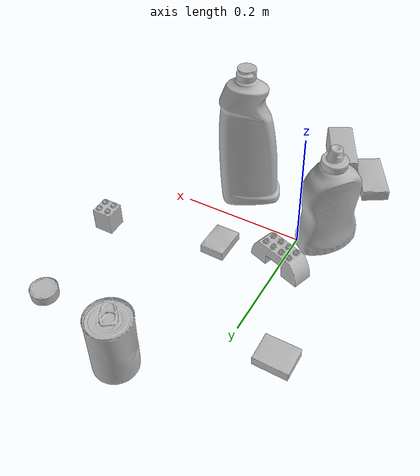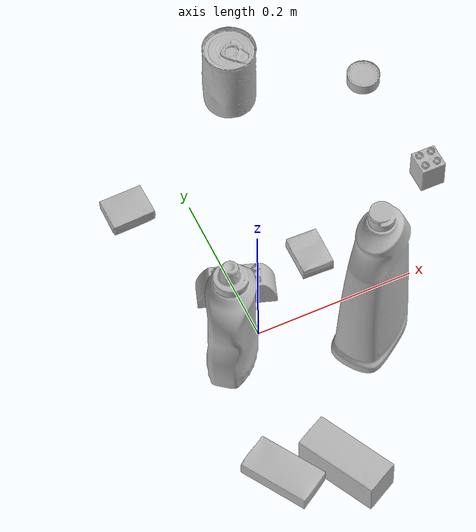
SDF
<sdf version="1.4">
  <world name="default">
    <light name="light1" type="point">
      <pose>0 0 1 0 0 0</pose>
      <diffuse>3 3 3 1</diffuse>
      <specular>3 3 3 1</specular>
    </light>
    <light name="light2" type="point">
      <pose>0 0.5 2 0 0 0</pose>
      <diffuse>1 1 1 1</diffuse>
      <specular>1 1 1 1</specular>
    </light>
    <light name="light3" type="point">
      <pose>0 0.5 2 0 0 0</pose>
      <diffuse>3 3 3 1</diffuse>
      <specular>3 3 3 1</specular>
    </light>
    <scene>
      <ambient>0.7 0.7 0.7</ambient>
    </scene>
    <model name="bottle1">
      <link name="link_bottle1">
        <collision name="default">
          <geometry>
            <mesh>
              <uri>model://bleach_cleanser/collision_meshes/collision.obj</uri>
              <scale>1.0 1.0 1.0</scale>
            </mesh>
          </geometry>
          <surface>
            <friction>
              <ode>
                <mu>0.5</mu>
                <mu2>0.5</mu2>
              </ode>
            </friction>
          <contact>
        <ode>
            <max_vel>0</max_vel>
            <min_depth>0.0001</min_depth>
            <kp>1e8</kp>
        </ode>
    </contact></surface>
        </collision>
        <visual name="default">
          <geometry>
            <mesh>
              <uri>model://bleach_cleanser/visual_meshes/visual.dae</uri>
              <scale>1.0 1.0 1.0</scale>
            </mesh>
          </geometry>
        </visual>
        <inertial>
          <mass>0.7954697608947754</mass>
          <pose>0.00012193184375064448 0.0037838825955986977 -0.02442161552608013 -0.0738167061583634 0.000420116841178447 -0.006875049257496471</pose>
          <inertia>
            <ixx>0.003871667</ixx>
            <iyy>0.0036078263</iyy>
            <izz>0.00066195446</izz>
            <ixy>0</ixy>
            <ixz>0</ixz>
            <iyz>0</iyz>
          </inertia>
        </inertial>
      </link>
      <pose>0.11748877912759781 -0.061021413654088974 0.12578417360782623 -0.00019960531061158365 1.7144503820110076e-05 -0.9838581283700285</pose>
    </model>
    <model name="bottle2">
      <link name="link_bottle2">
        <collision name="default">
          <geometry>
            <mesh>
              <uri>model://mustard_bottle/collision_meshes/collision.obj</uri>
              <scale>1.0 1.0 1.0</scale>
            </mesh>
          </geometry>
          <surface>
            <friction>
              <ode>
                <mu>0.5</mu>
                <mu2>0.5</mu2>
              </ode>
            </friction>
          <contact>
        <ode>
            <max_vel>0</max_vel>
            <min_depth>0.0001</min_depth>
            <kp>1e8</kp>
        </ode>
    </contact></surface>
        </collision>
        <visual name="default">
          <geometry>
            <mesh>
              <uri>model://mustard_bottle/visual_meshes/visual.dae</uri>
              <scale>1.0 1.0 1.0</scale>
            </mesh>
          </geometry>
        </visual>
        <inertial>
          <mass>0.5118113160133362</mass>
          <pose>0.0005032453336752951 -0.00015647397958673537 -0.017475785687565804 0.0004182313596805905 0.000946575919178121 0.024853765212265823</pose>
          <inertia>
            <ixx>0.00142123</ixx>
            <iyy>0.0012470091</iyy>
            <izz>0.0003745659</izz>
            <ixy>0</ixy>
            <ixz>0</ixz>
            <iyz>0</iyz>
          </inertia>
        </inertial>
      </link>
      <pose>-0.04040507599711418 -0.01643775776028633 0.09617073088884354 -3.9982374544792355e-05 0.0008749415394811107 2.4713550476762425</pose>
    </model>
    <model name="toy1">
      <link name="link_toy1">
        <collision name="default">
          <geometry>
            <mesh>
              <uri>model://b_lego_duplo/collision_meshes/collision.obj</uri>
              <scale>1.0 1.0 1.0</scale>
            </mesh>
          </geometry>
          <surface>
            <friction>
              <ode>
                <mu>0.5</mu>
                <mu2>0.5</mu2>
              </ode>
            </friction>
          <contact>
        <ode>
            <max_vel>0</max_vel>
            <min_depth>0.0001</min_depth>
            <kp>1e8</kp>
        </ode>
    </contact></surface>
        </collision>
        <visual name="default">
          <geometry>
            <mesh>
              <uri>model://b_lego_duplo/visual_meshes/visual.dae</uri>
              <scale>1.0 1.0 1.0</scale>
            </mesh>
          </geometry>
        </visual>
        <inertial>
          <mass>0.04622781649231911</mass>
          <pose>-0.00011053043272113428 -9.152668098977301e-06 0.0019294294761493802 -0.037494565787594906 -0.026354503997733224 0.45188645636516256</pose>
          <inertia>
            <ixx>9.46087e-06</ixx>
            <iyy>9.524471e-06</iyy>
            <izz>8.429326e-06</izz>
            <ixy>0</ixy>
            <ixz>0</ixz>
            <iyz>0</iyz>
          </inertia>
        </inertial>
      </link>
      <pose>0.28355082869529724 0.1169426292181015 0.021814996376633644 -6.471805276026222e-07 6.94217535022977e-08 -1.5658781842560214</pose>
    </model>
    <model name="toy2">
      <link name="link_toy2">
        <collision name="default">
          <geometry>
            <mesh>
              <uri>model://e_lego_duplo/collision_meshes/collision.obj</uri>
              <scale>1.0 1.0 1.0</scale>
            </mesh>
          </geometry>
          <surface>
            <friction>
              <ode>
                <mu>0.5</mu>
                <mu2>0.5</mu2>
              </ode>
            </friction>
          <contact>
        <ode>
            <max_vel>0</max_vel>
            <min_depth>0.0001</min_depth>
            <kp>1e8</kp>
        </ode>
    </contact></surface>
        </collision>
        <visual name="default">
          <geometry>
            <mesh>
              <uri>model://e_lego_duplo/visual_meshes/visual.dae</uri>
              <scale>1.0 1.0 1.0</scale>
            </mesh>
          </geometry>
        </visual>
        <inertial>
          <mass>0.08809097856283188</mass>
          <pose>0.00032560486579313874 0.00023485404381062835 0.0019521467620506883 -0.022567425824888195 -6.82459351116558e-05 -0.007625145117383363</pose>
          <inertia>
            <ixx>1.836988e-05</ixx>
            <iyy>7.539474e-05</iyy>
            <izz>7.34193e-05</izz>
            <ixy>0</ixy>
            <ixz>0</ixz>
            <iyz>0</iyz>
          </inertia>
        </inertial>
      </link>
      <pose>-2.189906081184745e-05 0.061974167823791504 0.02180899679660797 5.745104776728132e-08 2.9360928827348422e-08 2.817312432563464</pose>
    </model>
    <model name="can1">
      <link name="link_can1">
        <collision name="default">
          <geometry>
            <mesh>
              <uri>model://tomato_soup_can/collision_meshes/collision.obj</uri>
              <scale>1.0 1.0 1.0</scale>
            </mesh>
          </geometry>
          <surface>
            <friction>
              <ode>
                <mu>0.5</mu>
                <mu2>0.5</mu2>
              </ode>
            </friction>
          <contact>
        <ode>
            <max_vel>0</max_vel>
            <min_depth>0.0001</min_depth>
            <kp>1e8</kp>
        </ode>
    </contact></surface>
        </collision>
        <visual name="default">
          <geometry>
            <mesh>
              <uri>model://tomato_soup_can/visual_meshes/visual.dae</uri>
              <scale>1.0 1.0 1.0</scale>
            </mesh>
          </geometry>
        </visual>
        <inertial>
          <mass>0.4347945749759674</mass>
          <pose>0.0001265227037947625 0.00010805525380419567 -0.0017973979702219367 0.007020064127759274 0.0004229940757469139 -0.009903323281130803</pose>
          <inertia>
            <ixx>0.00047671542</ixx>
            <iyy>0.00047396024</iyy>
            <izz>0.00024707714</izz>
            <ixy>0</ixy>
            <ixz>0</ixz>
            <iyz>0</iyz>
          </inertia>
        </inertial>
      </link>
      <pose>0.11505159735679626 0.33096519112586975 0.05127399414777756 -4.5598527050238275e-07 -8.484473158258728e-07 0.3485246542702021</pose>
    </model>
    <model name="can2">
      <link name="link_can2">
        <collision name="default">
          <geometry>
            <mesh>
              <uri>model://tuna_fish_can/collision_meshes/collision.obj</uri>
              <scale>0.5 0.5 0.5</scale>
            </mesh>
          </geometry>
          <surface>
            <friction>
              <ode>
                <mu>0.5</mu>
                <mu2>0.5</mu2>
              </ode>
            </friction>
          <contact>
        <ode>
            <max_vel>0</max_vel>
            <min_depth>0.0001</min_depth>
            <kp>1e8</kp>
        </ode>
    </contact></surface>
        </collision>
        <visual name="default">
          <geometry>
            <mesh>
              <uri>model://tuna_fish_can/visual_meshes/visual.dae</uri>
              <scale>0.5 0.5 0.5</scale>
            </mesh>
          </geometry>
        </visual>
        <inertial>
          <mass>0.02951119653880596</mass>
          <pose>-2.0361847418826073e-05 -7.256335720740026e-06 -0.0005269026733003557 -0.0017944763161136105 0.00017161533088142807 0.2405366956082085</pose>
          <inertia>
            <ixx>3.989958e-06</ixx>
            <iyy>3.9733272e-06</iyy>
            <izz>6.827389e-06</izz>
            <ixy>0</ixy>
            <ixz>0</ixz>
            <iyz>0</iyz>
          </inertia>
        </inertial>
      </link>
      <pose>0.2784363925457001 0.28372982144355774 0.008520000614225864 5.1009121184415926e-08 1.875337186701406e-08 -2.0247434874056713</pose>
    </model>
    <model name="box1">
      <link name="link_box1">
        <collision name="default">
          <geometry>
            <mesh>
              <uri>model://sugar_box/collision_meshes/collision.obj</uri>
              <scale>0.5 0.5 0.5</scale>
            </mesh>
          </geometry>
          <surface>
            <friction>
              <ode>
                <mu>0.5</mu>
                <mu2>0.5</mu2>
              </ode>
            </friction>
          <contact>
        <ode>
            <max_vel>0</max_vel>
            <min_depth>0.0001</min_depth>
            <kp>1e8</kp>
        </ode>
    </contact></surface>
        </collision>
        <visual name="default">
          <geometry>
            <mesh>
              <uri>model://sugar_box/visual_meshes/visual.dae</uri>
              <scale>0.5 0.5 0.5</scale>
            </mesh>
          </geometry>
        </visual>
        <inertial>
          <mass>0.10932230949401855</mass>
          <pose>0.0005171863595023751 1.924554817378521e-05 -0.00018182402709499002 -0.00040462630024242077 0.0010506636385781449 0.0026153787888990553</pose>
          <inertia>
            <ixx>2.277176e-05</ixx>
            <iyy>7.3603005e-05</iyy>
            <izz>8.811158e-05</izz>
            <ixy>0</ixy>
            <ixz>0</ixz>
            <iyz>0</iyz>
          </inertia>
        </inertial>
      </link>
      <pose>-0.055472902953624725 -0.18573875725269318 0.011399305425584316 0.000775300351147049 -0.023433040435834197 -1.0359260192148032</pose>
    </model>
    <model name="box2">
      <link name="link_box2">
        <collision name="default">
          <geometry>
            <mesh>
              <uri>model://pudding_box/collision_meshes/collision.obj</uri>
              <scale>0.5 0.5 0.5</scale>
            </mesh>
          </geometry>
          <surface>
            <friction>
              <ode>
                <mu>0.5</mu>
                <mu2>0.5</mu2>
              </ode>
            </friction>
          <contact>
        <ode>
            <max_vel>0</max_vel>
            <min_depth>0.0001</min_depth>
            <kp>1e8</kp>
        </ode>
    </contact></surface>
        </collision>
        <visual name="default">
          <geometry>
            <mesh>
              <uri>model://pudding_box/visual_meshes/visual.dae</uri>
              <scale>0.5 0.5 0.5</scale>
            </mesh>
          </geometry>
        </visual>
        <inertial>
          <mass>0.061322033405303955</mass>
          <pose>0.00024474109522998333 0.00040339428232982755 -0.0002594413817860186 0.0052131013423229325 -0.006603797777692156 0.020079823300565562</pose>
          <inertia>
            <ixx>1.733035e-05</ixx>
            <iyy>1.1659984e-05</iyy>
            <izz>2.559279e-05</izz>
            <ixy>0</ixy>
            <ixz>0</ixz>
            <iyz>0</iyz>
          </inertia>
        </inertial>
      </link>
      <pose>-0.07205254584550858 0.2224038541316986 0.00986290443688631 0.022349677516445662 -0.011390930581103334 -1.5620429159509253</pose>
    </model>
    <model name="box3">
      <link name="link_box3">
        <collision name="default">
          <geometry>
            <mesh>
              <uri>model://cracker_box/collision_meshes/collision.obj</uri>
              <scale>0.25 0.25 0.25</scale>
            </mesh>
          </geometry>
          <surface>
            <friction>
              <ode>
                <mu>0.5</mu>
                <mu2>0.5</mu2>
              </ode>
            </friction>
          <contact>
        <ode>
            <max_vel>0</max_vel>
            <min_depth>0.0001</min_depth>
            <kp>1e8</kp>
        </ode>
    </contact></surface>
        </collision>
        <visual name="default">
          <geometry>
            <mesh>
              <uri>model://cracker_box/visual_meshes/visual.dae</uri>
              <scale>0.25 0.25 0.25</scale>
            </mesh>
          </geometry>
        </visual>
        <inertial>
          <mass>0.05027599632740021</mass>
          <pose>0.00023660380975343287 6.358561222441494e-05 -0.00042573834070935845 -0.0003162076618733006 -0.011106490531610344 0.00254679570085012</pose>
          <inertia>
            <ixx>7.992481e-06</ixx>
            <iyy>1.3197154e-05</iyy>
            <izz>1.8833553e-05</izz>
            <ixy>0</ixy>
            <ixz>0</ixz>
            <iyz>0</iyz>
          </inertia>
        </inertial>
      </link>
      <pose>0.10144475102424622 0.07128002494573593 0.009096029214560986 -0.01405056074367396 -0.005016622960770724 -1.595730375961791</pose>
    </model>
    <model name="box4">
      <link name="link_box4">
        <collision name="default">
          <geometry>
            <mesh>
              <uri>model://wood_block/collision_meshes/collision.obj</uri>
              <scale>0.5 0.5 0.5</scale>
            </mesh>
          </geometry>
          <surface>
            <friction>
              <ode>
                <mu>0.5</mu>
                <mu2>0.5</mu2>
              </ode>
            </friction>
          <contact>
        <ode>
            <max_vel>0</max_vel>
            <min_depth>0.0001</min_depth>
            <kp>1e8</kp>
        </ode>
    </contact></surface>
        </collision>
        <visual name="default">
          <geometry>
            <mesh>
              <uri>model://wood_block/visual_meshes/visual.dae</uri>
              <scale>0.5 0.5 0.5</scale>
            </mesh>
          </geometry>
        </visual>
        <inertial>
          <mass>0.30035653710365295</mass>
          <pose>-2.9066577553749084e-06 -0.000285404734313488 0.00013204291462898254 -0.05221128362191582 -0.005192695718477931 -0.0068613783725326285</pose>
          <inertia>
            <ixx>0.00010048062</ixx>
            <iyy>0.00031741828</iyy>
            <izz>0.00031623102</izz>
            <ixy>0</ixy>
            <ixz>0</ixz>
            <iyz>0</iyz>
          </inertia>
        </inertial>
      </link>
      <pose>0.011241125874221325 -0.21059399843215942 0.022629255428910255 -0.005208371374670895 0.00571870175362936 2.0491863604607867</pose>
    </model>
  <physics type="ode">
      <max_contacts>50</max_contacts>
      <ode>
        <solver>
          <type>quick</type>
          <iters>75</iters>
        </solver>
        <constraints>
          <contact_max_correcting_vel>0</contact_max_correcting_vel>
          <contact_surface_layer>0</contact_surface_layer>
        </constraints>
      </ode>
    </physics></world>
</sdf>
